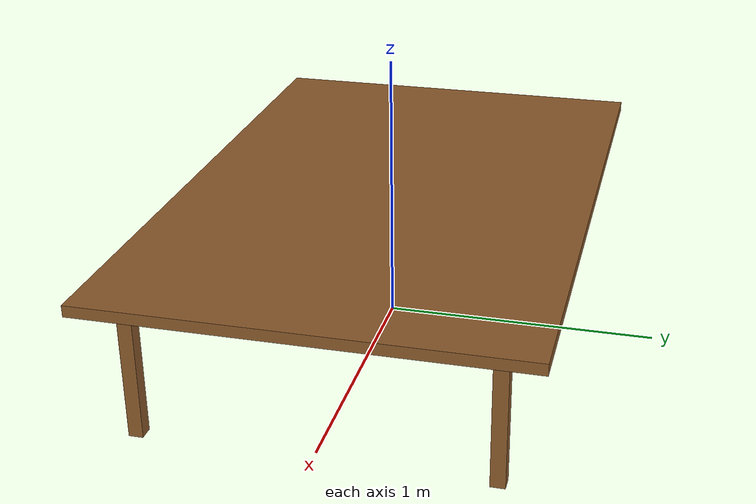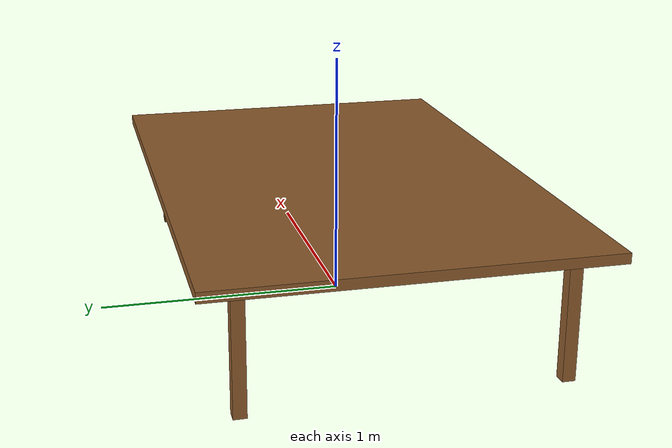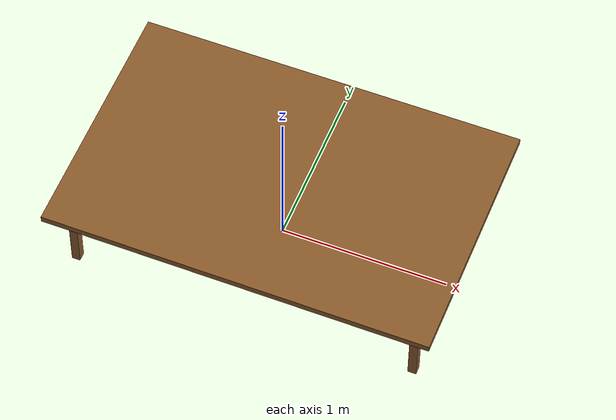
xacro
<?xml version="1.0" ?>

<robot name="table" xmlns:xacro="http://www.ros.org/wiki/xacro">
    <material name="brown">
        <color rgba="${139.0/255} ${90.0/255} ${43.0/255} 1" />
    </material>

    <xacro:property name="support_size1" value="0.05" />
    <xacro:property name="support_depth" value="0.5" />
    <xacro:property name="top_width" value="2" />
    <xacro:property name="top_height" value="1.2" />
    <xacro:property name="top_depth" value="0.04" />

    <xacro:macro name="inertial_matrix" params="mass height width depth">
        <inertial>
            <mass value="${mass}" />
            <inertia ixx="${(depth*depth + height*height)*mass/12}" ixy="0.0" ixz="0.0" iyy="${(width*width + depth*depth)*mass/12}" iyz="0.0" izz="${(width*width + height*height)*mass/12}" />
        </inertial>
    </xacro:macro>

    <link name="table_link" />
    <link name="table_support_1">
        <visual>
            <geometry>
                <box size="${support_size1} ${support_size1} ${support_depth}" />
            </geometry>
            <material name="brown" />
            <origin rpy="0 0 0" xyz="${top_width/2 + support_size1/2} ${top_height/2} ${support_depth/2}" />
        </visual>
        <collision>
            <geometry>
                <box size="${support_size1} ${support_size1} ${support_depth}" />
            </geometry>
            <material name="brown" />
            <origin rpy="0 0 0" xyz="${top_width/2 + support_size1/2} ${top_height/2} ${support_depth/2}" />
        </collision>
        <xacro:inertial_matrix mass="0.3" width="${support_size1}" height="${support_size1}" depth="${support_depth}" />
    </link>
    <joint name="joint1" type="fixed">
        <parent link="table_link" />
        <child link="table_support_1" />
    </joint>

    <link name="table_support_2">
        <visual>
            <geometry>
                <box size="${support_size1} ${support_size1} ${support_depth}" />
            </geometry>
            <material name="brown" />
            <origin rpy="0 0 0" xyz="${top_width/2 + support_size1/2} ${-top_height/2} ${support_depth/2}" />
        </visual>
        <collision>
            <geometry>
                <box size="${support_size1} ${support_size1} ${support_depth}" />
            </geometry>
            <material name="brown" />
            <origin rpy="0 0 0" xyz="${top_width/2 + support_size1/2} ${-top_height/2} ${support_depth/2}" />
        </collision>
        <xacro:inertial_matrix mass="0.3" width="${support_size1}" height="${support_size1}" depth="${support_depth}" />
    </link>
    <joint name="joint2" type="fixed">
        <parent link="table_link" />
        <child link="table_support_2" />
    </joint>

    <link name="table_support_3">
        <visual>
            <geometry>
                <box size="${support_size1} ${support_size1} ${support_depth}" />
            </geometry>
            <material name="brown" />
            <origin rpy="0 0 0" xyz="${-top_width/2 - support_size1/2} ${top_height/2} ${support_depth/2}" />
        </visual>
        <collision>
            <geometry>
                <box size="${support_size1} ${support_size1} ${support_depth}" />
            </geometry>
            <material name="brown" />
            <origin rpy="0 0 0" xyz="${-top_width/2 - support_size1/2} ${top_height/2} ${support_depth/2}" />
        </collision>
        <xacro:inertial_matrix mass="0.3" width="${support_size1}" height="${support_size1}" depth="${support_depth}" />
    </link>
    <joint name="joint3" type="fixed">
        <parent link="table_link" />
        <child link="table_support_3" />
    </joint>

    <link name="table_support_4">
        <visual>
            <geometry>
                <box size="${support_size1} ${support_size1} ${support_depth}" />
            </geometry>
            <material name="brown" />
            <origin rpy="0 0 0" xyz="${-top_width/2 - support_size1/2} ${-top_height/2} ${support_depth/2}" />
        </visual>
        <collision>
            <geometry>
                <box size="${support_size1} ${support_size1} ${support_depth}" />
            </geometry>
            <material name="brown" />
            <origin rpy="0 0 0" xyz="${-top_width/2 - support_size1/2} ${-top_height/2} ${support_depth/2}" />
        </collision>
        <xacro:inertial_matrix mass="0.3" width="${support_size1}" height="${support_size1}" depth="${support_depth}" />
    </link>
    <joint name="joint4" type="fixed" >
        <parent link="table_link" />
        <child link="table_support_4" />
    </joint>

    <link name="table_top">
        <visual>
            <geometry>
                <box size="${top_width + 0.3} ${top_height + 0.3} ${top_depth}" />
            </geometry>
            <material name="brown" />
            <origin rpy="0 0 0" xyz="0 0 ${support_depth}" />
        </visual>
        <collision>
            <geometry>
                <box size="${top_width + 0.3} ${top_height + 0.3} ${top_depth}" />
            </geometry>
            <material name="brown" />
            <origin rpy="0 0 0" xyz="0 0 ${support_depth}" />
        </collision>
        <xacro:inertial_matrix mass="1" width="${top_width + 0.3}" height="${top_height + 0.3}" depth="${top_depth}" />
    </link>
    <joint name="top_joint" type="fixed">
        <parent link="table_link" />
        <child link="table_top" />
    </joint>

    <gazebo reference="table_support_1">
        <material>Gazebo/Wood</material>
    </gazebo>
    <gazebo reference="table_support_2">
        <material>Gazebo/Wood</material>
    </gazebo>
    <gazebo reference="table_support_3">
        <material>Gazebo/Wood</material>
    </gazebo>
    <gazebo reference="table_support_4">
        <material>Gazebo/Wood</material>
    </gazebo>
    <gazebo reference="table_top">
        <material>Gazebo/Wood</material>
    </gazebo>

    <gazebo>
        <static>true</static>
    </gazebo>
</robot>
